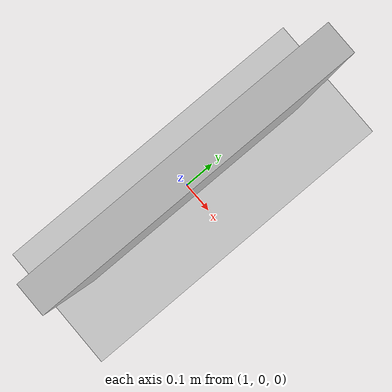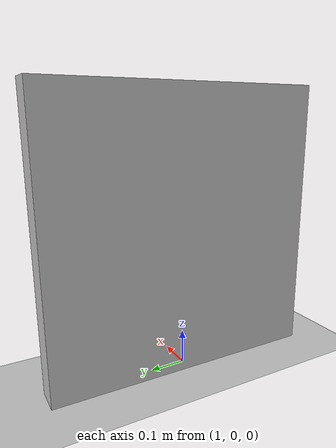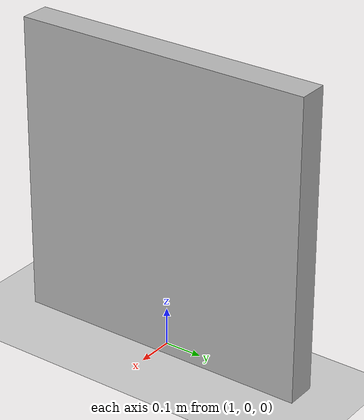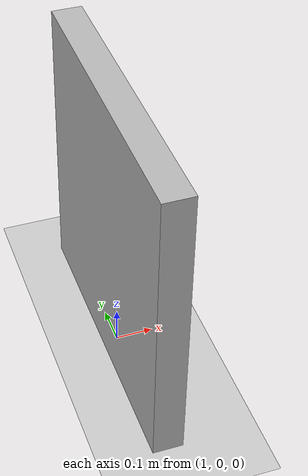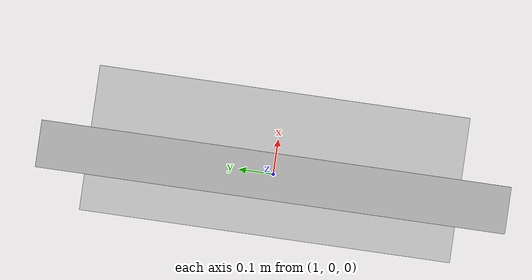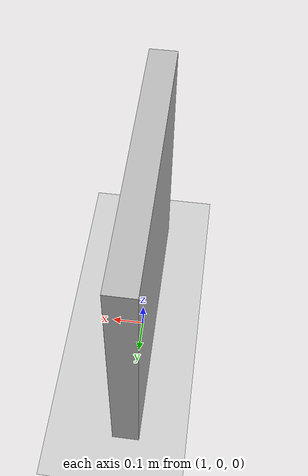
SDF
<?xml version="1.0" ?>

<sdf version="1.5">
	<world name="default">
		<!-- A global light source -->
		<light type="directional" name="my_light">
		    <pose>0 0 10 0 0 0</pose>
		    <diffuse>.9 .9 .9 1</diffuse>
		    <specular>.1 .1 .1 1</specular>
		    <attenuation>
		        <range>20</range>
		    </attenuation>
		    <direction>1 1 -1</direction>
		    <cast_shadows>true</cast_shadows>
		</light>

		<!-- A ground plane -->
		<include>
			<uri>model://ground_plane</uri>
		</include>

        	<!-- charuco board -->
		<include>
			<uri>model://charuco_board</uri>
			<pose>1 0 0.4 1.5708 0 0</pose>
		</include>
	</world>
</sdf>

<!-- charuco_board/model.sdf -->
<sdf version="1.5">
  <model name="charuco_board">
    <static>true</static>
    <link name="link">
      <collision name="collision">
        <geometry>
          <box>
            <size>0.08 0.8 0.8</size>
          </box>
        </geometry>
        <surface>
          <friction>
            <ode>
              <mu>100</mu>
              <mu2>50</mu2>
            </ode>
          </friction>
        </surface>
      </collision>

      <visual name="visual">
        <geometry>
          <box>
            <size>0.08 0.8 0.8</size>
          </box>
        </geometry>
        <material>
          <script>
            <uri>model://charuco_board/materials/scripts</uri>
            <uri>model://charuco_board/materials/textures</uri>
            <name>charuco_board/Diffuse</name>
          </script>
        </material>
      </visual>
    </link>
  </model>
</sdf>
